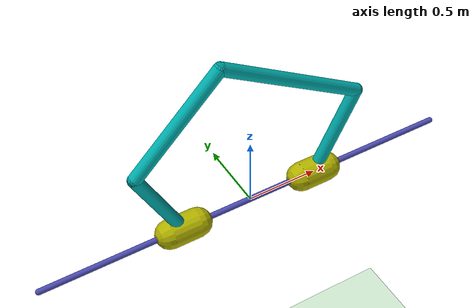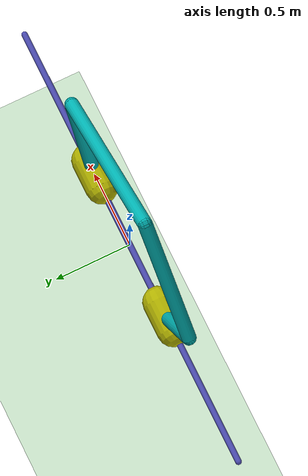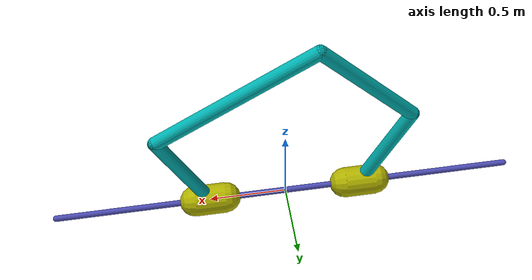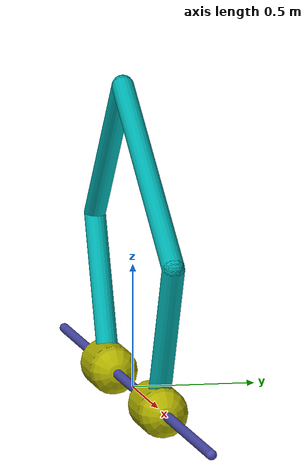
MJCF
<mujoco model="cartpole">
    <compiler coordinate="local" inertiafromgeom="true"/>
    <custom>
    <numeric data="2" name="frame_skip"/>
    </custom>
    <default>
    <joint damping="0.05"/>
    <geom contype="0" friction="0.1 0.1 1" rgba="0.7 0.7 0 1"/> # friction: 1st is sliding friction,x plane 2nd is torsional friction about the xy plane. 3rd is rolling, xz plane
    </default>
    <option gravity="1e-5 0 -9.81" integrator="RK4" timestep="0.01"/>
    <size nstack="3000"/>
    <worldbody>
    <geom name="floor" pos="0 0 -3.0" rgba="0.8 0.9 0.8 1" size="40 40 40" type="plane"/>
    <geom name="rail" pos="0 0 0" quat="0.707 0 0.707 0" rgba="0.3 0.3 0.7 1" size="0.02 1.5" type="capsule"/>
    <body name="cart" pos="-.5 0 0">
    <joint axis="1 0 0" limited="true" margin="0.01" name="slider" pos="0 0 0" range="0 1e-9" type="hinge"/>
    <geom name="cart" pos="0 0 0" quat="0.707 0 0.707 0" size="0.1 0.1" type="capsule"/>
    <body name="pole1" pos="0 0 0">
    <joint axis="0 1 0" name="hinge" pos="0 0 0" type="hinge" /> # range is the range of movement
    <geom fromto="0 0 0 -0.3 0 0.6" name="cpole1" rgba="0 0.7 0.7 1" size="0.045 0.3" type="capsule"/> # fromto is starting x,y,z to ending x,y,z specifing the length
    <body name="pole2" pos="-0.3 0 0.6"> # the x defines the angle from the front view and the y defines the offset from the top view.
    <joint axis="0 1 0" name="hinge2" pos="0 0 0" type="hinge" />
    <geom fromto="0 0 0 0.6 0 0.6" name="cpole2" rgba="0 0.7 0.7 1" size="0.045 0.3" type="capsule" />
    <site name="tip" pos="0.6 0 0.6" size="0.01 0.01"/>
    </body>
    </body>
    </body>
    <body name="cart2" pos=".5 0 0">
    <joint axis="1 0 0" limited="true" margin="0.01" name="slider1" pos="0 0 0" range="0 1e-9" type="hinge"/>
    <geom name="cart2" pos="0 0 0" quat="0.707 0 0.707 0" size="0.1 0.1" type="capsule"/>
    <body name="pole3" pos="0 0 0">
    <joint axis="0 1 0" name="hinge3" pos="0 0 0" type="hinge" />
    <geom fromto="0 0 0 0.3 0 0.6" name="cpole3" rgba="0 0.7 0.7 1" size="0.045 0.3" type="capsule"/>
    <body name="pole4" pos="0.3 0 0.6">
    <joint axis="0 1 0" name="hinge4" pos="0 0 0" type="hinge" />
    <geom fromto="0 0 0 -1 0 0.6" name="cpole4" rgba="0 0.7 0.7 1" size="0.045 0.3" type="capsule"/>
    </body>
    </body>
    </body>
    </worldbody>
    <equality>
    <connect active= "true" body1 = "pole2" body2 = "pole4" anchor = "0.6 0 0.6"/> # initial anchor is with respect to 1st cart. X,Y,Z coordinates
    <connect active= "true" body1 = "pole4" body2 = "pole2" anchor = "-1 0 0.6"/>
    </equality>
    <actuator>
    <motor ctrllimited="true" ctrlrange="-1 1" gear="300" joint="hinge" name="pole_1"/>
    <motor ctrllimited="true" ctrlrange="-1 1" gear="300" joint="hinge3" name="pole_2"/>
    </actuator>
    <contact>
    <exclude body1 = "pole2" body2 = "pole4" />
    </contact>
</mujoco>
